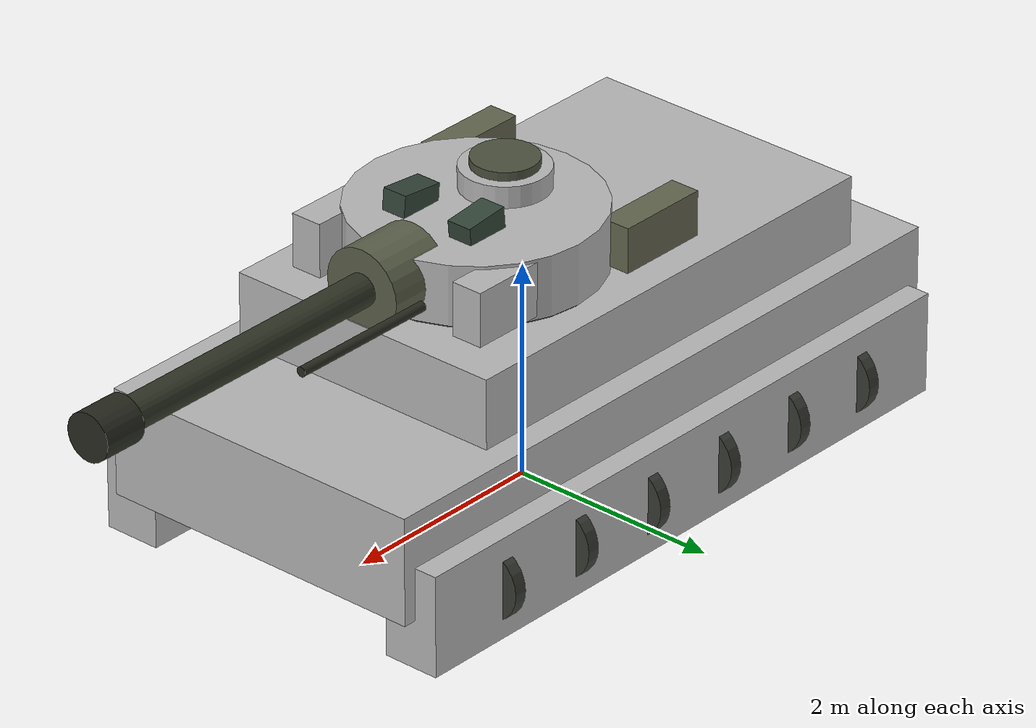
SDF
<?xml version="1.0"?>
<sdf version="1.6">
  <!-- Deliberately primitive-only: low GPU load, no unverified external mesh licence. -->
  <model name="tracking_tank">
    <static>false</static>
    <allow_auto_disable>false</allow_auto_disable>
    <link name="base_link">
      <gravity>false</gravity>
      <self_collide>false</self_collide>
      <kinematic>false</kinematic>
      <inertial>
        <mass>1800.0</mass>
        <inertia><ixx>900</ixx><iyy>1400</iyy><izz>1700</izz></inertia>
      </inertial>
      <visual name="left_track">
        <pose>0 1.55 0.62 0 0 0</pose>
        <geometry><box><size>6.25 0.54 0.94</size></box></geometry>
        <material><script><uri>model://tracking_tank/materials/scripts</uri><uri>model://tracking_tank/materials/textures</uri><name>XdUavTrack/TrackRubber</name></script></material>
      </visual>
      <visual name="right_track">
        <pose>0 -1.55 0.62 0 0 0</pose>
        <geometry><box><size>6.25 0.54 0.94</size></box></geometry>
        <material><script><uri>model://tracking_tank/materials/scripts</uri><uri>model://tracking_tank/materials/textures</uri><name>XdUavTrack/TrackRubber</name></script></material>
      </visual>
      <!-- Six road wheels on each track add a recognizable lower silhouette. -->
      <visual name="road_wheel_left_1"><pose>-2.25 1.62 0.60 0 1.57079632679 0</pose><geometry><cylinder><radius>0.34</radius><length>0.12</length></cylinder></geometry><material><ambient>0.13 0.14 0.12 1</ambient><diffuse>0.22 0.23 0.20 1</diffuse></material></visual>
      <visual name="road_wheel_left_2"><pose>-1.35 1.62 0.60 0 1.57079632679 0</pose><geometry><cylinder><radius>0.34</radius><length>0.12</length></cylinder></geometry><material><ambient>0.13 0.14 0.12 1</ambient><diffuse>0.22 0.23 0.20 1</diffuse></material></visual>
      <visual name="road_wheel_left_3"><pose>-0.45 1.62 0.60 0 1.57079632679 0</pose><geometry><cylinder><radius>0.34</radius><length>0.12</length></cylinder></geometry><material><ambient>0.13 0.14 0.12 1</ambient><diffuse>0.22 0.23 0.20 1</diffuse></material></visual>
      <visual name="road_wheel_left_4"><pose>0.45 1.62 0.60 0 1.57079632679 0</pose><geometry><cylinder><radius>0.34</radius><length>0.12</length></cylinder></geometry><material><ambient>0.13 0.14 0.12 1</ambient><diffuse>0.22 0.23 0.20 1</diffuse></material></visual>
      <visual name="road_wheel_left_5"><pose>1.35 1.62 0.60 0 1.57079632679 0</pose><geometry><cylinder><radius>0.34</radius><length>0.12</length></cylinder></geometry><material><ambient>0.13 0.14 0.12 1</ambient><diffuse>0.22 0.23 0.20 1</diffuse></material></visual>
      <visual name="road_wheel_left_6"><pose>2.25 1.62 0.60 0 1.57079632679 0</pose><geometry><cylinder><radius>0.34</radius><length>0.12</length></cylinder></geometry><material><ambient>0.13 0.14 0.12 1</ambient><diffuse>0.22 0.23 0.20 1</diffuse></material></visual>
      <visual name="road_wheel_right_1"><pose>-2.25 -1.62 0.60 0 1.57079632679 0</pose><geometry><cylinder><radius>0.34</radius><length>0.12</length></cylinder></geometry><material><ambient>0.13 0.14 0.12 1</ambient><diffuse>0.22 0.23 0.20 1</diffuse></material></visual>
      <visual name="road_wheel_right_2"><pose>-1.35 -1.62 0.60 0 1.57079632679 0</pose><geometry><cylinder><radius>0.34</radius><length>0.12</length></cylinder></geometry><material><ambient>0.13 0.14 0.12 1</ambient><diffuse>0.22 0.23 0.20 1</diffuse></material></visual>
      <visual name="road_wheel_right_3"><pose>-0.45 -1.62 0.60 0 1.57079632679 0</pose><geometry><cylinder><radius>0.34</radius><length>0.12</length></cylinder></geometry><material><ambient>0.13 0.14 0.12 1</ambient><diffuse>0.22 0.23 0.20 1</diffuse></material></visual>
      <visual name="road_wheel_right_4"><pose>0.45 -1.62 0.60 0 1.57079632679 0</pose><geometry><cylinder><radius>0.34</radius><length>0.12</length></cylinder></geometry><material><ambient>0.13 0.14 0.12 1</ambient><diffuse>0.22 0.23 0.20 1</diffuse></material></visual>
      <visual name="road_wheel_right_5"><pose>1.35 -1.62 0.60 0 1.57079632679 0</pose><geometry><cylinder><radius>0.34</radius><length>0.12</length></cylinder></geometry><material><ambient>0.13 0.14 0.12 1</ambient><diffuse>0.22 0.23 0.20 1</diffuse></material></visual>
      <visual name="road_wheel_right_6"><pose>2.25 -1.62 0.60 0 1.57079632679 0</pose><geometry><cylinder><radius>0.34</radius><length>0.12</length></cylinder></geometry><material><ambient>0.13 0.14 0.12 1</ambient><diffuse>0.22 0.23 0.20 1</diffuse></material></visual>
      <visual name="hull">
        <pose>0 0 1.10 0 0 0</pose>
        <geometry><box><size>6.50 3.20 1.00</size></box></geometry>
        <material><script><uri>model://tracking_tank/materials/scripts</uri><uri>model://tracking_tank/materials/textures</uri><name>XdUavTrack/BenchmarkCamo</name></script></material>
      </visual>
      <visual name="upper_hull">
        <pose>-0.32 0 1.88 0 0 0</pose>
        <geometry><box><size>4.62 2.72 0.74</size></box></geometry>
        <material><script><uri>model://tracking_tank/materials/scripts</uri><uri>model://tracking_tank/materials/textures</uri><name>XdUavTrack/BenchmarkCamo</name></script></material>
      </visual>
      <visual name="turret_ring">
        <pose>0.58 0 2.25 0 0 0</pose>
        <geometry><cylinder><radius>1.10</radius><length>0.18</length></cylinder></geometry>
        <material><ambient>0.18 0.20 0.15 1</ambient><diffuse>0.30 0.32 0.24 1</diffuse></material>
      </visual>
      <visual name="turret">
        <pose>0.58 0 2.55 0 0 0</pose>
        <geometry><cylinder><radius>1.12</radius><length>0.56</length></cylinder></geometry>
        <material><script><uri>model://tracking_tank/materials/scripts</uri><uri>model://tracking_tank/materials/textures</uri><name>XdUavTrack/BenchmarkCamo</name></script></material>
      </visual>
      <visual name="turret_left_cheek">
        <pose>1.10 0.88 2.55 0 0 0</pose>
        <geometry><box><size>1.18 0.30 0.50</size></box></geometry>
        <material><script><uri>model://tracking_tank/materials/scripts</uri><uri>model://tracking_tank/materials/textures</uri><name>XdUavTrack/BenchmarkCamo</name></script></material>
      </visual>
      <visual name="turret_right_cheek">
        <pose>1.10 -0.88 2.55 0 0 0</pose>
        <geometry><box><size>1.18 0.30 0.50</size></box></geometry>
        <material><script><uri>model://tracking_tank/materials/scripts</uri><uri>model://tracking_tank/materials/textures</uri><name>XdUavTrack/BenchmarkCamo</name></script></material>
      </visual>
      <visual name="gun_mantlet">
        <pose>1.67 0 2.57 0 1.57079632679 0</pose>
        <geometry><cylinder><radius>0.38</radius><length>0.62</length></cylinder></geometry>
        <material><ambient>0.22 0.24 0.18 1</ambient><diffuse>0.36 0.38 0.29 1</diffuse></material>
      </visual>
      <visual name="barrel">
        <pose>3.15 0 2.58 0 1.57079632679 0</pose>
        <geometry><cylinder><radius>0.15</radius><length>3.45</length></cylinder></geometry>
        <material><ambient>0.10 0.11 0.08 1</ambient><diffuse>0.19 0.21 0.15 1</diffuse></material>
      </visual>
      <visual name="muzzle_brake">
        <pose>4.98 0 2.58 0 1.57079632679 0</pose>
        <geometry><cylinder><radius>0.22</radius><length>0.42</length></cylinder></geometry>
        <material><ambient>0.08 0.09 0.07 1</ambient><diffuse>0.15 0.16 0.12 1</diffuse></material>
      </visual>
      <visual name="coaxial_barrel">
        <pose>2.45 0.43 2.48 0 1.57079632679 0</pose>
        <geometry><cylinder><radius>0.045</radius><length>1.45</length></cylinder></geometry>
        <material><ambient>0.08 0.09 0.07 1</ambient><diffuse>0.16 0.17 0.13 1</diffuse></material>
      </visual>
      <visual name="commander_cupola">
        <pose>0.22 0 2.92 0 0 0</pose>
        <geometry><cylinder><radius>0.40</radius><length>0.22</length></cylinder></geometry>
        <material><script><uri>model://tracking_tank/materials/scripts</uri><uri>model://tracking_tank/materials/textures</uri><name>XdUavTrack/BenchmarkCamo</name></script></material>
      </visual>
      <visual name="commander_hatch">
        <pose>0.22 0 3.07 0 0 0</pose>
        <geometry><cylinder><radius>0.30</radius><length>0.08</length></cylinder></geometry>
        <material><ambient>0.18 0.20 0.15 1</ambient><diffuse>0.30 0.32 0.24 1</diffuse></material>
      </visual>
      <visual name="sight_left">
        <pose>0.98 0.36 2.91 0 0.10 0</pose>
        <geometry><box><size>0.42 0.24 0.20</size></box></geometry>
        <material><ambient>0.10 0.14 0.12 1</ambient><diffuse>0.20 0.27 0.22 1</diffuse></material>
      </visual>
      <visual name="sight_right">
        <pose>0.98 -0.36 2.91 0 -0.10 0</pose>
        <geometry><box><size>0.42 0.24 0.20</size></box></geometry>
        <material><ambient>0.10 0.14 0.12 1</ambient><diffuse>0.20 0.27 0.22 1</diffuse></material>
      </visual>
      <visual name="turret_stowage_left">
        <pose>-0.45 1.00 2.53 0 0 0</pose>
        <geometry><box><size>0.88 0.28 0.42</size></box></geometry>
        <material><ambient>0.25 0.27 0.20 1</ambient><diffuse>0.39 0.40 0.31 1</diffuse></material>
      </visual>
      <visual name="turret_stowage_right">
        <pose>-0.45 -1.00 2.53 0 0 0</pose>
        <geometry><box><size>0.88 0.28 0.42</size></box></geometry>
        <material><ambient>0.25 0.27 0.20 1</ambient><diffuse>0.39 0.40 0.31 1</diffuse></material>
      </visual>
    </link>
  </model>
</sdf>
